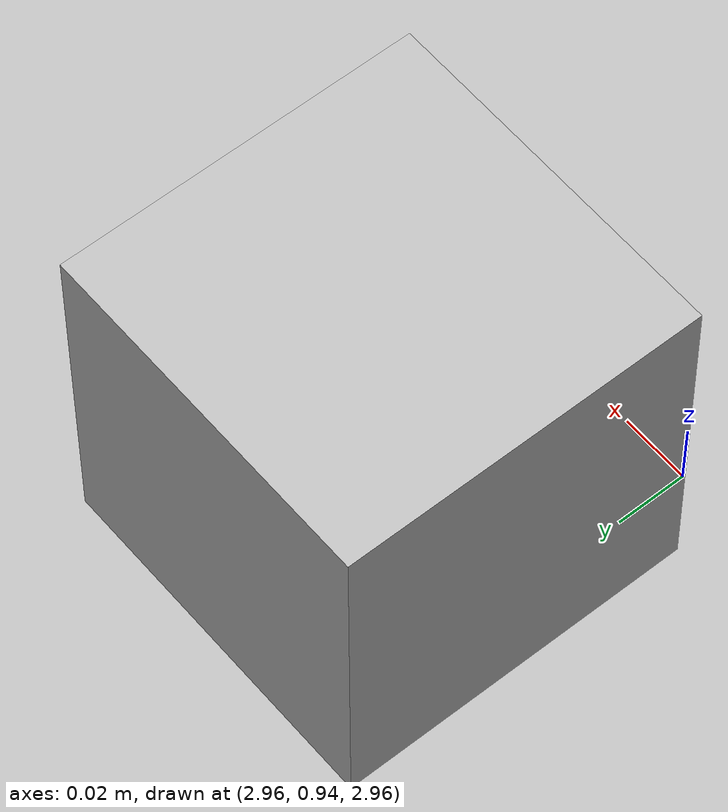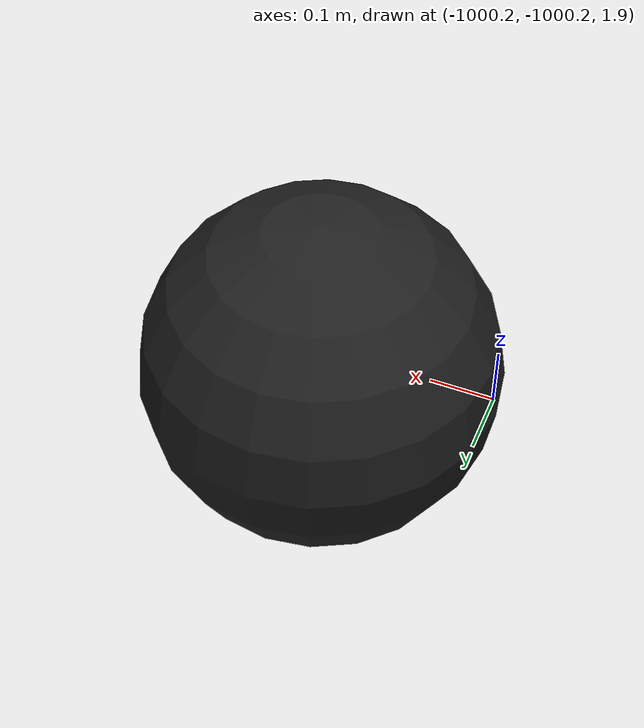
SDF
<?xml version="1.0" ?>
<?xml-model href="http://sdformat.org/schemas/root.xsd" schematypens="http://www.w3.org/2001/XMLSchema"?>
<sdf version="1.5">
  <world name="default">
    <plugin name="mrs_gazebo_static_transform_republisher_plugin" filename="libMRSGazeboStaticTransformRepublisher.so"/>

    <!-- coordinate system {-->
    <spherical_coordinates>
      <surface_model>EARTH_WGS84</surface_model>
      <latitude_deg>47.397743</latitude_deg>
      <longitude_deg>8.545594</longitude_deg>
      <elevation>0.0</elevation>
      <heading_deg>0</heading_deg>
    </spherical_coordinates>

    <!-- physics engine {-->
    <physics name="default_physics" default="0" type="ode">
      <gravity>0 0 -9.8066</gravity>
      <ode>
        <solver>
          <type>quick</type>
          <iters>10</iters>
          <sor>1.3</sor>
          <use_dynamic_moi_rescaling>0</use_dynamic_moi_rescaling>
        </solver>
        <constraints>
          <cfm>0</cfm>
          <erp>0.2</erp>
          <contact_max_correcting_vel>1000</contact_max_correcting_vel>
          <contact_surface_layer>0.001</contact_surface_layer>
        </constraints>
      </ode>
      <max_step_size>0.004</max_step_size>
      <real_time_factor>1</real_time_factor>
      <real_time_update_rate>250</real_time_update_rate>
      <magnetic_field>6.0e-06 2.3e-05 -4.2e-05</magnetic_field>
    </physics>

    <!-- setup shadows {-->
    <scene>
      <shadows>false</shadows>
      <sky>
        <clouds/>
      </sky>
    </scene>

    <!-- sun {-->

    <light name='sun' type='directional'>
      <pose frame=''>0 0 1000 0.4 0.2 0</pose>
      <diffuse>1 1 1 1</diffuse>
      <specular>0.6 0.6 0.6 1</specular>
      <direction>0.1 0.1 -0.9</direction>
      <attenuation>
        <range>20</range>
        <constant>0.5</constant>
        <linear>0.01</linear>
        <quadratic>0.001</quadratic>
      </attenuation>
      <cast_shadows>1</cast_shadows>
    </light>

    <!-- ground plane {-->
    <model name="ground_plane">
      <static>true</static>
      <link name="link">
        <collision name="collision">
          <pose>0 0 0 0 0 0</pose>
          <geometry>
            <plane>
              <normal>0 0 1</normal>
              <size>250 250</size>
            </plane>
          </geometry>
          <surface>
            <friction>
              <ode>
                <mu>1</mu>
                <mu2>1</mu2>
              </ode>
            </friction>
          </surface>
        </collision>
        <visual name="grass">
          <pose>0 0 0 0 0 0</pose>
          <cast_shadows>false</cast_shadows>
          <geometry>
            <mesh>
              <uri>file://grass_plane/meshes/grass_plane.dae</uri>
            </mesh>
          </geometry>
        </visual>
      </link>
    </model>

    <!-- THE VOID (for spawning objects out of camera view) {-->
    <model name='the_void'>
      <static>1</static>
      <link name='link'>
        <pose frame=''>0 0 0.1 0 -0 0</pose>
        <visual name='the_void'>
          <pose frame=''>0 0 2 0 -0 0</pose>
          <geometry>
            <sphere>
              <radius>0.25</radius>
            </sphere>
          </geometry>
          <material>
            <script>
              <uri>file://media/materials/scripts/Gazebo.material</uri>
              <name>Gazebo/Black</name>
            </script>
          </material>
        </visual>
        <self_collide>0</self_collide>
        <enable_wind>0</enable_wind>
        <kinematic>0</kinematic>
      </link>
      <pose frame=''>-1000 -1000 0 0 0 0</pose>
    </model>

    <!-- user camera {-->
    <gui>
      <camera name="camera">
        <pose>-60 -100 30 0 0.4 0.89</pose>
      </camera>
    </gui>

    <!-- GUI frame synchronization {-->
    <plugin name="mrs_gazebo_rviz_cam_synchronizer" filename="libMRSGazeboRvizCameraSynchronizer.so" >
      <target_frame_id>gazebo_user_camera</target_frame_id>
      <world_origin_frame_id>uav1/gps_origin</world_origin_frame_id>
      <frame_to_follow>uav1</frame_to_follow>
    </plugin>

    <include>
      <uri>model://camera</uri>
      <pose>3 3 0 0 0 0</pose>
    </include>
  </world>
</sdf>

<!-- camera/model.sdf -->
<sdf version="1.4">
  <model name="spectator_camera">
    <link name="link2">
      <pose>0.00 -2.00 3.0 0 0 0</pose>
      <inertial>
        <mass>0.1</mass>
        <inertia>
          <ixx>0.000166667</ixx>
          <iyy>0.000166667</iyy>
          <izz>0.000166667</izz>
        </inertia>
      </inertial>
      <collision name="collision">
        <geometry>
          <box>
            <size>0.1 0.1 0.1</size>
          </box>
        </geometry>
      </collision>
      <visual name="visual">
        <geometry>
          <box>
            <size>0.1 0.1 0.1</size>
          </box>
        </geometry>
      </visual>
      <sensor type="camera" name="camera2">
        <update_rate>30.0</update_rate>
        <camera name="head">
          <horizontal_fov>1.3962634</horizontal_fov>
          <image>
            <width>800</width>
            <height>800</height>
            <format>R8G8B8</format>
          </image>
          <clip>
            <near>0.02</near>
            <far>300</far>
          </clip>
          <noise>
            <type>gaussian</type>
            <!-- Noise is sampled independently per pixel on each frame.
                That pixel's noise value is added to each of its color
                channels, which at that point lie in the range [0,1]. -->
            <mean>0.0</mean>
            <stddev>0.007</stddev>
          </noise>
        </camera>
        <plugin name="camera_controller" filename="libgazebo_ros_camera.so">
          <alwaysOn>true</alwaysOn>
          <updateRate>0.0</updateRate>
          <cameraName>rrbot/camera2</cameraName>
          <imageTopicName>image_raw</imageTopicName>
          <cameraInfoTopicName>camera_info</cameraInfoTopicName>
          <frameName>camera_link</frameName>
          <hackBaseline>0.07</hackBaseline>
          <distortionK1>0.0</distortionK1>
          <distortionK2>0.0</distortionK2>
          <distortionK3>0.0</distortionK3>
          <distortionT1>0.0</distortionT1>
          <distortionT2>0.0</distortionT2>
        </plugin>
      </sensor>
    </link>
    <link name="link1">
      <pose>-2.00 0.00 3.0 0 0 0</pose>
      <inertial>
        <mass>0.1</mass>
        <inertia>
          <ixx>0.000166667</ixx>
          <iyy>0.000166667</iyy>
          <izz>0.000166667</izz>
        </inertia>
      </inertial>
      <collision name="collision">
        <geometry>
          <box>
            <size>0.1 0.1 0.1</size>
          </box>
        </geometry>
      </collision>
      <visual name="visual">
        <geometry>
          <box>
            <size>0.1 0.1 0.1</size>
          </box>
        </geometry>
      </visual>
      <sensor type="camera" name="camera1">
        <update_rate>30.0</update_rate>
        <camera name="head">
          <horizontal_fov>1.3962634</horizontal_fov>
          <image>
            <width>800</width>
            <height>800</height>
            <format>R8G8B8</format>
          </image>
          <clip>
            <near>0.02</near>
            <far>300</far>
          </clip>
          <noise>
            <type>gaussian</type>
            <!-- Noise is sampled independently per pixel on each frame.
                That pixel's noise value is added to each of its color
                channels, which at that point lie in the range [0,1]. -->
            <mean>0.0</mean>
            <stddev>0.007</stddev>
          </noise>
        </camera>
        <plugin name="camera_controller" filename="libgazebo_ros_camera.so">
          <alwaysOn>true</alwaysOn>
          <updateRate>0.0</updateRate>
          <cameraName>rrbot/camera1</cameraName>
          <imageTopicName>image_raw</imageTopicName>
          <cameraInfoTopicName>camera_info</cameraInfoTopicName>
          <frameName>camera_link</frameName>
          <hackBaseline>0.07</hackBaseline>
          <distortionK1>0.0</distortionK1>
          <distortionK2>0.0</distortionK2>
          <distortionK3>0.0</distortionK3>
          <distortionT1>0.0</distortionT1>
          <distortionT2>0.0</distortionT2>
        </plugin>
      </sensor>
    </link>
  </model>
</sdf>
